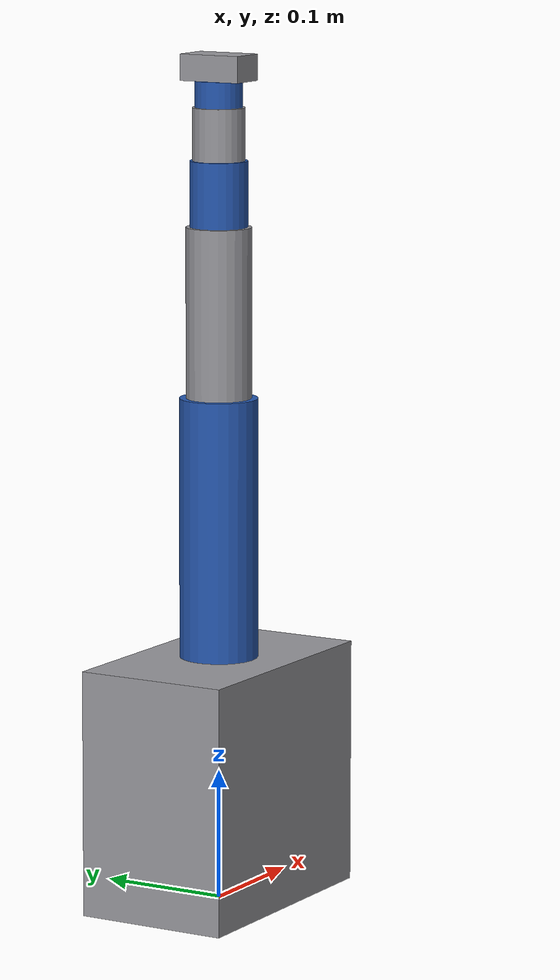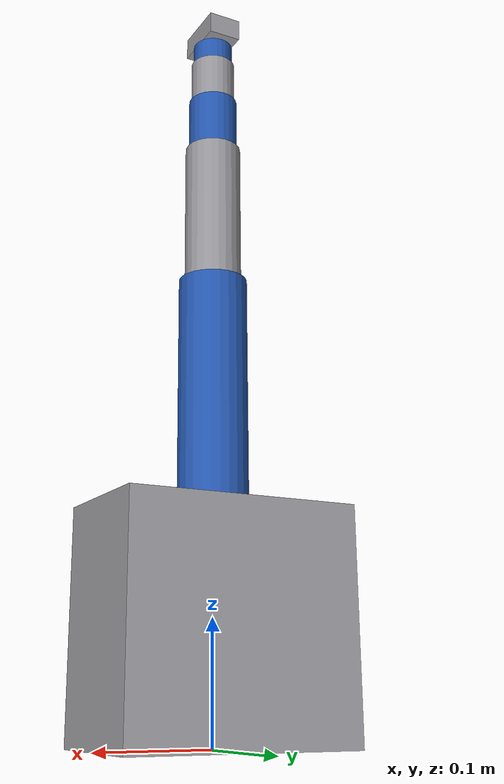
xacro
<?xml version="1.0"?>
<robot xmlns:xacro="http://www.ros.org/wiki/xacro" name="rob3">

  <xacro:property name="deg" value="0.017453292519943295"/>

  <material name="rob3_grey"><color rgba="0.6 0.6 0.62 1"/></material>
  <material name="rob3_blue"><color rgba="0.15 0.35 0.7 1"/></material>

  <xacro:macro name="cyl_link" params="name segment_length radius material">
    <link name="${name}">
      <visual>
        <origin xyz="0 0 ${segment_length/2}" rpy="0 0 0"/>
        <geometry><cylinder length="${segment_length}" radius="${radius}"/></geometry>
        <material name="${material}"/>
      </visual>
      <collision>
        <origin xyz="0 0 ${segment_length/2}" rpy="0 0 0"/>
        <geometry><cylinder length="${segment_length}" radius="${radius}"/></geometry>
      </collision>
      <inertial>
        <mass value="0.2"/>
        <inertia ixx="1e-3" ixy="0" ixz="0" iyy="1e-3" iyz="0" izz="1e-3"/>
      </inertial>
    </link>
  </xacro:macro>

  <!-- Base Link: height 190 mm, width 120 mm, length 200 mm -->
  <link name="base_link">
    <visual>
      <origin xyz="0 0 0.095" rpy="0 0 0"/>
      <geometry><box size="0.20 0.12 0.190"/></geometry>
      <material name="rob3_grey"/>
    </visual>
  </link>

  <xacro:cyl_link name="link1" segment_length="0.20" radius="0.03" material="rob3_blue"/>
  <xacro:cyl_link name="link2" segment_length="0.13" radius="0.025" material="rob3_grey"/>
  <xacro:cyl_link name="link3" segment_length="0.05" radius="0.022" material="rob3_blue"/>
  <xacro:cyl_link name="link4" segment_length="0.04" radius="0.02"  material="rob3_grey"/>
  <xacro:cyl_link name="link5" segment_length="0.02" radius="0.018" material="rob3_blue"/>
  <link name="gripper_link">
    <visual>
      <origin xyz="0 0 0.01" rpy="0 0 0"/>
      <geometry><box size="0.03 0.05 0.02"/></geometry>
      <material name="rob3_grey"/>
    </visual>
  </link>

  <!-- Axis 0: base rotation (q1) +80..-80 deg -->
  <joint name="base" type="revolute">
    <parent link="base_link"/><child link="link1"/>
    <origin xyz="0 0 0.190" rpy="0 0 0"/><axis xyz="0 0 1"/>
    <limit lower="${-80*deg}" upper="${80*deg}" effort="10" velocity="1.0"/>
  </joint>

  <!-- Axis 1: shoulder (q2) +70..-30 deg -->
  <joint name="shoulder" type="revolute">
    <parent link="link1"/><child link="link2"/>
    <origin xyz="0 0 0.20" rpy="0 0 0"/><axis xyz="0 1 0"/>
    <limit lower="${-30*deg}" upper="${70*deg}" effort="10" velocity="1.0"/>
  </joint>

  <!-- Axis 2: elbow (q3) 0..-100 deg -->
  <joint name="elbow" type="revolute">
    <parent link="link2"/><child link="link3"/>
    <origin xyz="0 0 0.13" rpy="0 0 0"/><axis xyz="0 1 0"/>
    <limit lower="${-100*deg}" upper="0" effort="8" velocity="1.0"/>
  </joint>

  <!-- Axis 3: wrist pitch (q4) +/-100 deg -->
  <joint name="wrist_pitch" type="revolute">
    <parent link="link3"/><child link="link4"/>
    <origin xyz="0 0 0.05" rpy="0 0 0"/><axis xyz="0 1 0"/>
    <limit lower="${-100*deg}" upper="${100*deg}" effort="5" velocity="1.5"/>
  </joint>

  <!-- Axis 4: wrist roll (q5) +/-100 deg -->
  <joint name="wrist_roll" type="revolute">
    <parent link="link4"/><child link="link5"/>
    <origin xyz="0 0 0.04" rpy="0 0 0"/><axis xyz="0 0 1"/>
    <limit lower="${-100*deg}" upper="${100*deg}" effort="5" velocity="1.5"/>
  </joint>

  <!-- Axis 5: gripper linear opening 0..60 mm (prismatic) -->
  <joint name="gripper" type="prismatic">
    <parent link="link5"/><child link="gripper_link"/>
    <origin xyz="0 0 0.02" rpy="0 0 0"/><axis xyz="1 0 0"/>
    <limit lower="0.0" upper="0.060" effort="20" velocity="0.05"/>
  </joint>

</robot>
